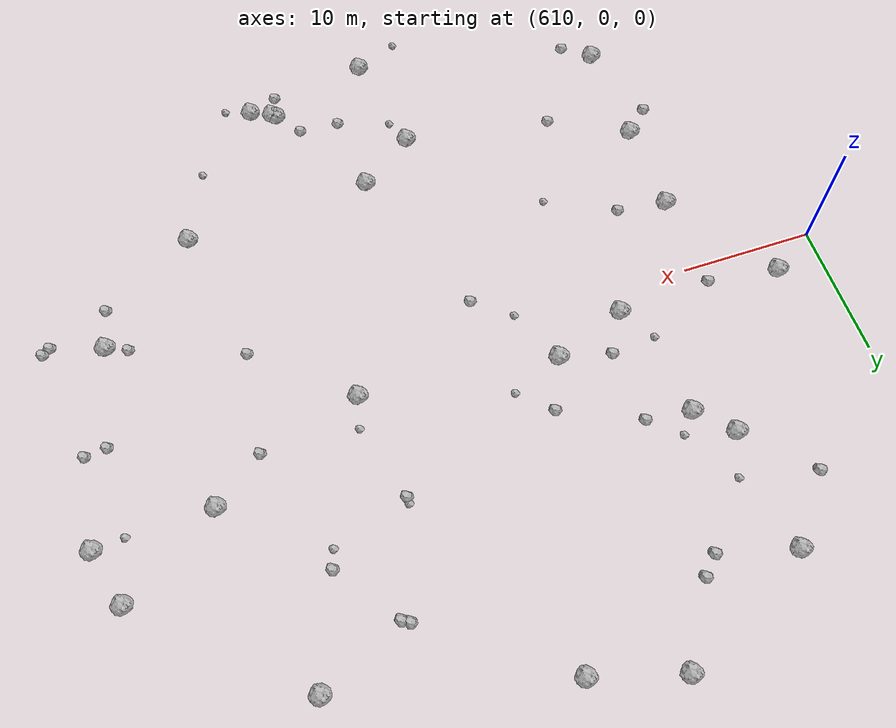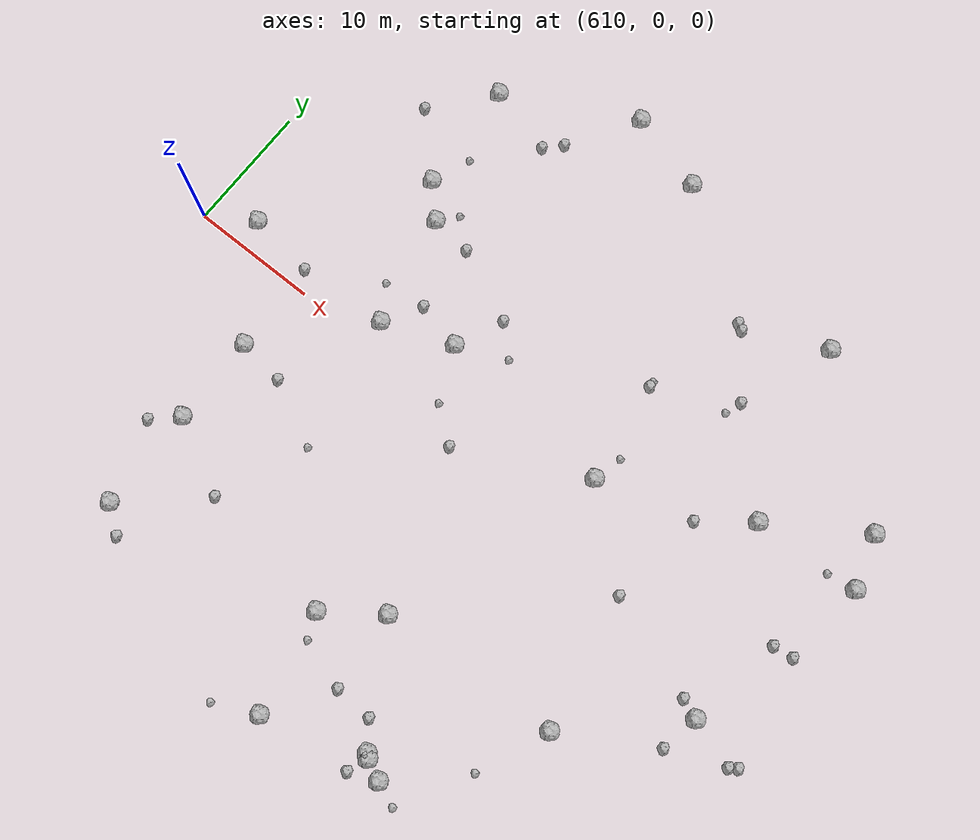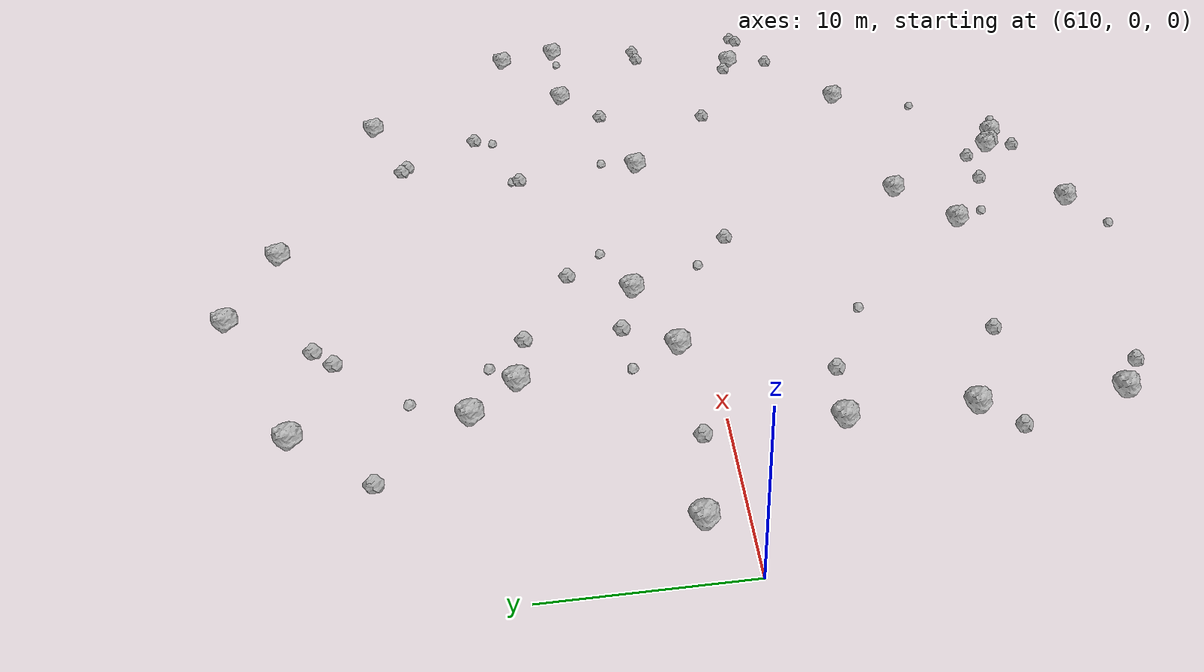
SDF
<sdf version="1.6">
 <world name="default">
  <include><uri>model://sun</uri></include>
  <model name="rock1_16_3">
   <include><uri>model://rock1</uri><pose>645.6429788669802 -23.377687740841765 0.5 0 0 0</pose></include>
  </model>
  <model name="rock1_16_4">
   <include><uri>model://rock1</uri><pose>631.4826689981064 3.853139757075624 0.5 0 0 0</pose></include>
  </model>
  <model name="rock1_16_5">
   <include><uri>model://rock1</uri><pose>661.9485986523812 -6.916310447549751 0.5 0 0 0</pose></include>
  </model>
  <model name="rock1_16_6">
   <include><uri>model://rock1</uri><pose>645.8531590781402 2.3190209444489795 0.5 0 0 0</pose></include>
  </model>
  <model name="rock1_16_7">
   <include><uri>model://rock1</uri><pose>637.687510243608 25.134418518567706 0.5 0 0 0</pose></include>
  </model>
  <model name="rock1_16_8">
   <include><uri>model://rock1</uri><pose>619.1561778845147 -5.887595937325244 0.5 0 0 0</pose></include>
  </model>
  <model name="rock1_16_9">
   <include><uri>model://rock1</uri><pose>647.1996582970498 -24.105012099275406 0.5 0 0 0</pose></include>
  </model>
  <model name="rock1_16_10">
   <include><uri>model://rock1</uri><pose>631.3866027963303 26.955923990641487 0.5 0 0 0</pose></include>
  </model>
  <model name="rock1_16_11">
   <include><uri>model://rock1</uri><pose>645.3663970960779 -23.125524090037807 0.5 0 0 0</pose></include>
  </model>
  <model name="rock1_16_12">
   <include><uri>model://rock1</uri><pose>657.0805046983039 7.166288881785633 0.5 0 0 0</pose></include>
  </model>
  <model name="rock1_16_13">
   <include><uri>model://rock1</uri><pose>613.60645423953 2.164802771641625 0.5 0 0 0</pose></include>
  </model>
  <model name="rock1_16_14">
   <include><uri>model://rock1</uri><pose>624.1777806819401 10.638919791208785 0.5 0 0 0</pose></include>
  </model>
  <model name="rock1_16_15">
   <include><uri>model://rock1</uri><pose>637.7488569167665 -25.817409027037154 0.5 0 0 0</pose></include>
  </model>
  <model name="rock1_16_16">
   <include><uri>model://rock1</uri><pose>621.8854202480751 12.988888970991688 0.5 0 0 0</pose></include>
  </model>
  <model name="rock1_16_17">
   <include><uri>model://rock1</uri><pose>636.1843500597112 -17.75042702216337 0.5 0 0 0</pose></include>
  </model>
  <model name="rock1_16_18">
   <include><uri>model://rock1</uri><pose>619.2353638609102 -12.923843709877499 0.5 0 0 0</pose></include>
  </model>
  <model name="rock1_16_19">
   <include><uri>model://rock1</uri><pose>621.3957906317903 21.856984802874834 0.5 0 0 0</pose></include>
  </model>
  <model name="rock1_16_20">
   <include><uri>model://rock1</uri><pose>653.6352191287418 21.03548270417877 0.5 0 0 0</pose></include>
  </model>
  <model name="rock1_16_21">
   <include><uri>model://rock1</uri><pose>640.349493743981 -14.74192769679815 0.5 0 0 0</pose></include>
  </model>
  <model name="rock1_16_22">
   <include><uri>model://rock1</uri><pose>654.4232225763999 -13.977692792642806 0.5 0 0 0</pose></include>
  </model>
  <model name="rock1_16_23">
   <include><uri>model://rock1</uri><pose>664.2086625257703 11.713984937787949 0.5 0 0 0</pose></include>
  </model>
  <model name="rock1_16_24">
   <include><uri>model://rock1</uri><pose>626.0010939793729 1.8143006320709638 0.5 0 0 0</pose></include>
  </model>
  <model name="rock1_16_25">
   <include><uri>model://rock1</uri><pose>619.3329412119717 -21.056531777674447 0.5 0 0 0</pose></include>
  </model>
  <model name="rock1_16_26">
   <include><uri>model://rock1</uri><pose>665.4585517939374 7.541347453465995 0.5 0 0 0</pose></include>
  </model>
  <model name="rock2_16_0">
   <include><uri>model://rock2</uri><pose>617.6196692128664 17.33392324896124 0.3 0 0 0</pose></include>
  </model>
  <model name="rock2_16_1">
   <include><uri>model://rock2</uri><pose>633.121301912443 7.613816431525905 0.3 0 0 0</pose></include>
  </model>
  <model name="rock2_16_2">
   <include><uri>model://rock2</uri><pose>666.3113253880088 -7.780617138732488 0.3 0 0 0</pose></include>
  </model>
  <model name="rock2_16_3">
   <include><uri>model://rock2</uri><pose>652.4491963059154 -3.3423709851371157 0.3 0 0 0</pose></include>
  </model>
  <model name="rock2_16_4">
   <include><uri>model://rock2</uri><pose>647.5204336762424 18.167961961855553 0.3 0 0 0</pose></include>
  </model>
  <model name="rock2_16_5">
   <include><uri>model://rock2</uri><pose>627.7098144875744 4.77075666878779 0.3 0 0 0</pose></include>
  </model>
  <model name="rock2_16_6">
   <include><uri>model://rock2</uri><pose>660.4225301757514 -6.281205038253077 0.3 0 0 0</pose></include>
  </model>
  <model name="rock2_16_7">
   <include><uri>model://rock2</uri><pose>627.440978984439 10.246414829045364 0.3 0 0 0</pose></include>
  </model>
  <model name="rock2_16_8">
   <include><uri>model://rock2</uri><pose>653.3720775650509 4.328466553763754 0.3 0 0 0</pose></include>
  </model>
  <model name="rock2_16_9">
   <include><uri>model://rock2</uri><pose>663.2045251025895 0.6527057889335772 0.3 0 0 0</pose></include>
  </model>
  <model name="rock2_16_10">
   <include><uri>model://rock2</uri><pose>650.813234466362 13.636558330465164 0.3 0 0 0</pose></include>
  </model>
  <model name="rock2_16_11">
   <include><uri>model://rock2</uri><pose>617.297720506026 -14.672400740038164 0.3 0 0 0</pose></include>
  </model>
  <model name="rock2_16_12">
   <include><uri>model://rock2</uri><pose>640.8749465798422 -20.99586832005928 0.3 0 0 0</pose></include>
  </model>
  <model name="rock2_16_13">
   <include><uri>model://rock2</uri><pose>627.9700665052718 21.677543466030606 0.3 0 0 0</pose></include>
  </model>
  <model name="rock2_16_14">
   <include><uri>model://rock2</uri><pose>635.9971463929012 -2.413456900428173 0.3 0 0 0</pose></include>
  </model>
  <model name="rock2_16_15">
   <include><uri>model://rock2</uri><pose>643.8832260820146 -21.188851435670234 0.3 0 0 0</pose></include>
  </model>
  <model name="rock2_16_16">
   <include><uri>model://rock2</uri><pose>622.829444372346 -6.377094401354405 0.3 0 0 0</pose></include>
  </model>
  <model name="rock2_16_17">
   <include><uri>model://rock2</uri><pose>621.3048197365105 -22.61767415902597 0.3 0 0 0</pose></include>
  </model>
  <model name="rock2_16_18">
   <include><uri>model://rock2</uri><pose>618.819904558218 1.4480640154661018 0.3 0 0 0</pose></include>
  </model>
  <model name="rock2_16_19">
   <include><uri>model://rock2</uri><pose>626.758535154915 20.421935309245498 0.3 0 0 0</pose></include>
  </model>
  <model name="rock2_16_20">
   <include><uri>model://rock2</uri><pose>644.7650186555953 10.409006804049284 0.3 0 0 0</pose></include>
  </model>
  <model name="rock2_16_21">
   <include><uri>model://rock2</uri><pose>661.3882274113846 -9.935774640431479 0.3 0 0 0</pose></include>
  </model>
  <model name="rock2_16_22">
   <include><uri>model://rock2</uri><pose>664.8017422852063 0.8367406602850771 0.3 0 0 0</pose></include>
  </model>
  <model name="rock2_16_23">
   <include><uri>model://rock2</uri><pose>624.9755502091679 -15.96639953564794 0.3 0 0 0</pose></include>
  </model>
  <model name="rock2_16_24">
   <include><uri>model://rock2</uri><pose>665.7222298460525 -8.17577917869031 0.3 0 0 0</pose></include>
  </model>
  <model name="rock2_16_25">
   <include><uri>model://rock2</uri><pose>645.0368362307526 -24.97780973103561 0.3 0 0 0</pose></include>
  </model>
  <model name="rock2_16_26">
   <include><uri>model://rock2</uri><pose>646.9967545159691 18.48169978880265 0.3 0 0 0</pose></include>
  </model>
  <model name="rock3_16_0">
   <include><uri>model://rock3</uri><pose>634.4040452330438 -27.366263278663872 0.2 0 0 0</pose></include>
  </model>
  <model name="rock3_16_1">
   <include><uri>model://rock3</uri><pose>636.955103025573 -19.744962756349928 0.2 0 0 0</pose></include>
  </model>
  <model name="rock3_16_2">
   <include><uri>model://rock3</uri><pose>663.1945270847079 7.25013514013196 0.2 0 0 0</pose></include>
  </model>
  <model name="rock3_16_3">
   <include><uri>model://rock3</uri><pose>635.2969880609182 5.477949847455527 0.2 0 0 0</pose></include>
  </model>
  <model name="rock3_16_4">
   <include><uri>model://rock3</uri><pose>624.3142853336271 4.4324309453934205 0.2 0 0 0</pose></include>
  </model>
  <model name="rock3_16_5">
   <include><uri>model://rock3</uri><pose>627.881377828743 -8.97366551496895 0.2 0 0 0</pose></include>
  </model>
  <model name="rock3_16_6">
   <include><uri>model://rock3</uri><pose>649.0634786566013 -24.92341269055138 0.2 0 0 0</pose></include>
  </model>
  <model name="rock3_16_7">
   <include><uri>model://rock3</uri><pose>650.3591297207573 12.278961186852158 0.2 0 0 0</pose></include>
  </model>
  <model name="rock3_16_8">
   <include><uri>model://rock3</uri><pose>633.3060000942054 -0.36572271525824007 0.2 0 0 0</pose></include>
  </model>
  <model name="rock3_16_9">
   <include><uri>model://rock3</uri><pose>652.1028244711206 -19.525317863858348 0.2 0 0 0</pose></include>
  </model>
  <model name="rock3_16_10">
   <include><uri>model://rock3</uri><pose>644.7364532753353 10.860585925764589 0.2 0 0 0</pose></include>
  </model>
  <model name="rock3_16_11">
   <include><uri>model://rock3</uri><pose>646.3943650660493 4.656956339639343 0.2 0 0 0</pose></include>
  </model>
  <model name="rock3_16_12">
   <include><uri>model://rock3</uri><pose>623.0367930626716 16.09183545372524 0.2 0 0 0</pose></include>
  </model>
  <model name="rock3_16_13">
   <include><uri>model://rock3</uri><pose>625.3087565334529 12.076436367809556 0.2 0 0 0</pose></include>
  </model>
 </world>
</sdf>
